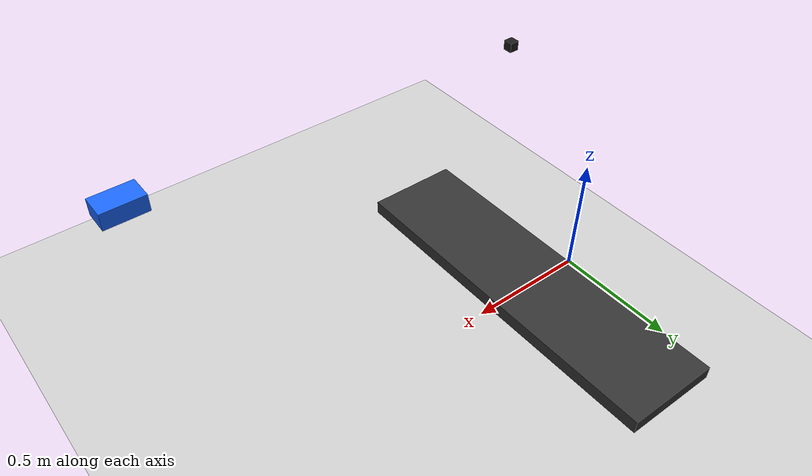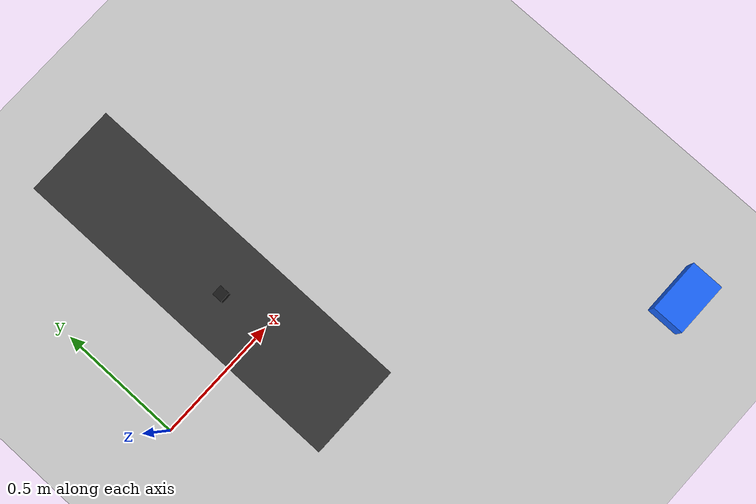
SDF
<?xml version="1.0" ?>
<sdf version="1.6">
  <world name="conveyor_world">

    <plugin name="gazebo_ros_state" filename="libgazebo_ros_state.so"/>

    <include>
      <uri>model://ground_plane</uri>
    </include>

    <include>
      <uri>model://sun</uri>
    </include>

    <model name="static_conveyor">
      <static>true</static>

      <!-- Position: x y z roll pitch yaw -->
      <pose>0.50 0.20 0.345 0 0 1.5708</pose>

      <link name="conveyor_link">
        <visual name="conveyor_visual">
          <geometry>
            <box>
              <size>1.30 0.35 0.05</size>
            </box>
          </geometry>
          <material>
            <ambient>0.2 0.2 0.2 1</ambient>
            <diffuse>0.2 0.2 0.2 1</diffuse>
          </material>
        </visual>

        <collision name="conveyor_collision">
          <geometry>
            <box>
              <size>1.30 0.35 0.05</size>
            </box>
          </geometry>
        </collision>
      </link>
    </model>

    <model name="overhead_camera">
      <static>true</static>
      <pose>0.50 0.0 1.20 0 1.5708 3.1416</pose>

      <link name="camera_link">
        <visual name="camera_visual">
          <geometry>
            <box>
              <size>0.03 0.03 0.03</size>
            </box>
          </geometry>
          <material>
            <ambient>0.1 0.1 0.1 1</ambient>
            <diffuse>0.1 0.1 0.1 1</diffuse>
          </material>
        </visual>

        <sensor name="conveyor_camera" type="camera">
          <update_rate>30</update_rate>
          <always_on>true</always_on>
          <camera>
            <horizontal_fov>1.047</horizontal_fov>
            <image>
              <width>640</width>
              <height>480</height>
              <format>R8G8B8</format>
            </image>
            <clip>
              <near>0.02</near>
              <far>10</far>
            </clip>
            <!-- Camera-noise variant of conveyor_world.world: per-pixel
                 Gaussian noise (stddev as a fraction of full scale) -->
            <noise>
              <type>gaussian</type>
              <mean>0.0</mean>
              <stddev>0.02</stddev>
            </noise>
          </camera>
          <plugin name="camera_controller" filename="libgazebo_ros_camera.so">
            <ros>
              <namespace>/camera</namespace>
            </ros>
            <frame_name>camera_link_optical</frame_name>
          </plugin>
        </sensor>
      </link>
    </model>

    <model name="moving_part">
      <static>false</static>
      <pose>1.50 -1.00 0.41 0 0 0</pose>

      <link name="part_link">
        <inertial>
          <mass>0.1</mass>
          <inertia>
            <ixx>0.001</ixx>
            <iyy>0.001</iyy>
            <izz>0.001</izz>
            <ixy>0</ixy>
            <ixz>0</ixz>
            <iyz>0</iyz>
          </inertia>
        </inertial>

        <visual name="part_visual">
          <geometry>
            <box>
              <size>0.20 0.12 0.08</size>
            </box>
          </geometry>
          <material>
            <ambient>0.1 0.4 1.0 1</ambient>
            <diffuse>0.1 0.4 1.0 1</diffuse>
          </material>
        </visual>

        <collision name="part_collision">
          <geometry>
            <box>
              <size>0.20 0.12 0.08</size>
            </box>
          </geometry>
        </collision>
      </link>
    </model>

  </world>
</sdf>
